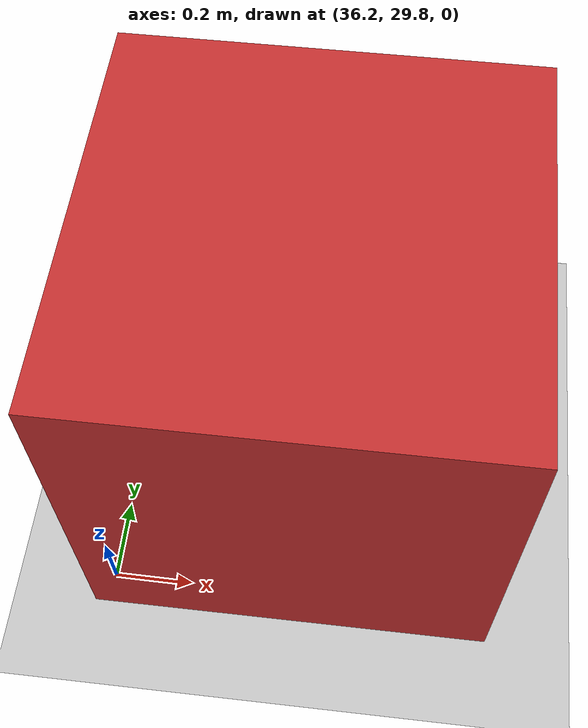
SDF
<?xml version="1.0"?>
<sdf version="1.8">
  <world name="default">
    <!-- Scene configuration for Harmonic compatibility -->
    <scene>
      <ambient>0.95 0.95 0.95 1</ambient>
      <background>0.3 0.3 0.3 1</background>
      <shadows>true</shadows>
      <sky>
        <clouds>
          <speed>3</speed>
        </clouds>
      </sky>
    </scene>

    <!-- Physics configuration optimized for Harmonic -->
    <physics type="ode">
      <real_time_update_rate>100.0</real_time_update_rate>
      <max_step_size>0.01</max_step_size>
      <real_time_factor>1</real_time_factor>
      <ode>
        <solver>
          <type>quick</type>
          <iters>150</iters>
          <precon_iters>0</precon_iters>
          <sor>1.400000</sor>
          <use_dynamic_moi_rescaling>1</use_dynamic_moi_rescaling>
        </solver>
        <constraints>
          <cfm>0.00001</cfm>
          <erp>0.2</erp>
          <contact_max_correcting_vel>2000.000000</contact_max_correcting_vel>
          <contact_surface_layer>0.01000</contact_surface_layer>
        </constraints>
      </ode>
    </physics>

    <!-- Harmonic-compatible plugins -->
    <plugin
      filename="gz-sim-physics-system"
      name="gz::sim::systems::Physics">
    </plugin>
    <plugin
      filename="gz-sim-user-commands-system"
      name="gz::sim::systems::UserCommands">
    </plugin>
    <plugin
      filename="gz-sim-scene-broadcaster-system"
      name="gz::sim::systems::SceneBroadcaster">
    </plugin>
    <plugin
      filename="gz-sim-sensors-system"
      name="gz::sim::systems::Sensors">
      <render_engine>ogre2</render_engine>
    </plugin>
    <plugin
      filename="gz-sim-imu-system"
      name="gz::sim::systems::Imu">
    </plugin>
    <plugin
      filename="gz-sim-navsat-system"
      name="gz::sim::systems::NavSat">
    </plugin>
    <!-- Spherical coordinates for GPS functionality -->
    <spherical_coordinates>
      <surface_model>EARTH_WGS84</surface_model>
      <latitude_deg>51.2731</latitude_deg>
      <longitude_deg>5.5716</longitude_deg>
      <elevation>76.0</elevation>
      <heading_deg>0</heading_deg>
    </spherical_coordinates>

    <!-- Sun light source -->
    <include>
      <uri>https://fuel.gazebosim.org/1.0/OpenRobotics/models/Sun</uri>
    </include>

    <include>
      <uri>https://fuel.gazebosim.org/1.0/OpenRobotics/models/Ground Plane</uri>
    </include>

    <!-- Robot(s) will be spawned seperately so not in the world file -->

    <model name="block_to_move_about"> <!-- Something to play with -->
  <pose>36.66 30.23 0.5 0 0 0</pose>
  <link name="link">
    <collision name="collision">
      <geometry>
        <box>
          <size>1 1 1</size>
        </box>
      </geometry>
    </collision>
    <visual name="visual">
      <geometry>
        <box>
          <size>1 1 1</size>
        </box>
      </geometry>
      <material>
        <ambient>0.6 0.1 0.1 1</ambient>
        <diffuse>0.8 0.2 0.2 1</diffuse>
      </material>
    </visual>
  </link>
</model>

  </world>
</sdf>
